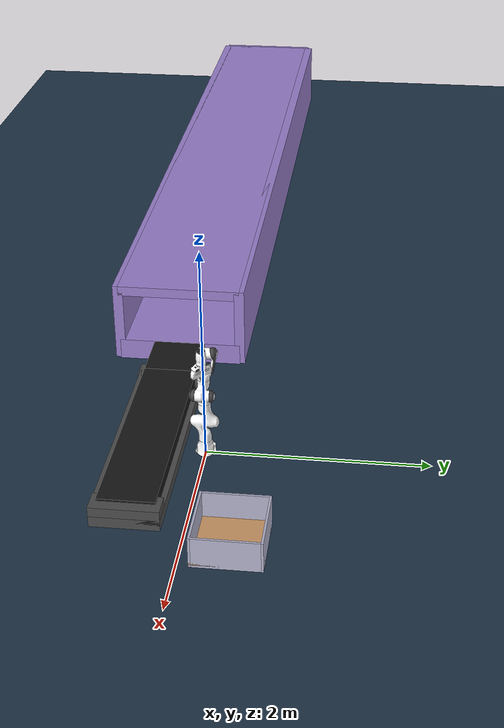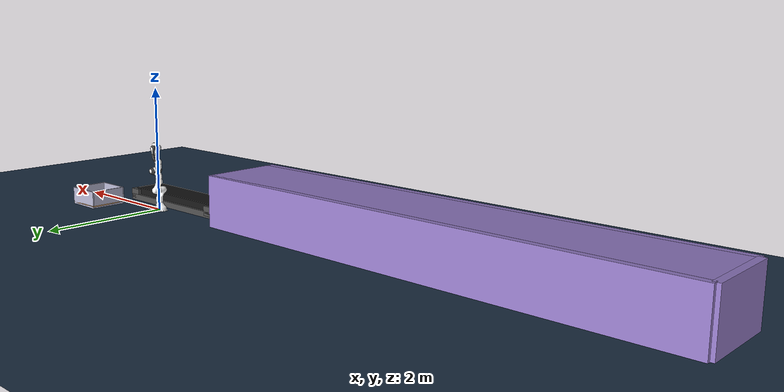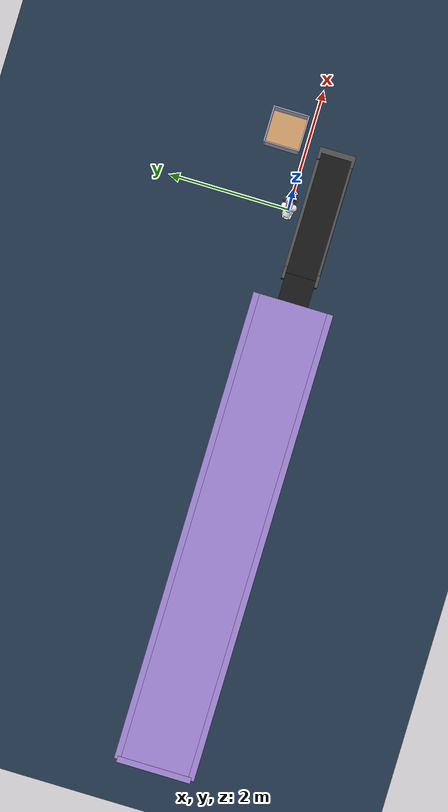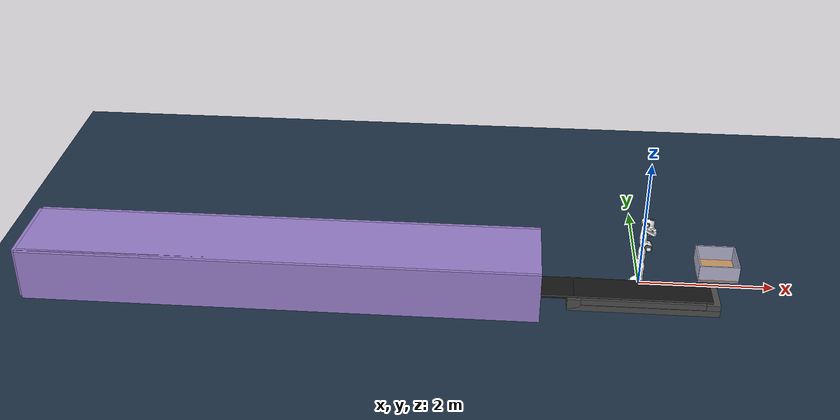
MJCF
<?xml version='1.0' encoding='utf-8'?>
<mujoco model="conveyor_box_system">
  <include file="panda.xml" />
  <include file="conveyor.xml" />
  <compiler angle="radian" coordinate="local" inertiafromgeom="true" />
  <option timestep="0.001" gravity="0 0 -9.81" integrator="RK4" />
  <asset>
    <material name="box_material" rgba="0.8 0.6 0.4 1" />
    <material name="ground_material" rgba="0.9 0.9 0.9 1" />
    <material name="wall_material" rgba="0.7 0.7 0.8 1" />
    <texture name="grid" type="2d" builtin="checker" rgb1="0.1 0.2 0.3" rgb2="0.2 0.3 0.4" width="300" height="300" />
    <material name="grid_material" texture="grid" texrepeat="8 8" rgba="0.8 0.8 0.8 1" />
  </asset>
  <worldbody>
    <geom name="ground" type="plane" size="10 10 0.1" material="grid_material" />
    <body name="collection_box" pos="1.2000000000000002 0.4 0.020000000000000004">
      <geom name="box_bottom" type="box" size="0.30000000000000004 0.30000000000000004 0.010000000000000002" material="box_material" />
      <geom name="box_wall1" type="box" size="0.30000000000000004 0.010000000000000002 0.16000000000000003" pos="0 0.29000000000000004 0.09000000000000002" material="wall_material" />
      <geom name="box_wall2" type="box" size="0.30000000000000004 0.010000000000000002 0.16000000000000003" pos="0 -0.29000000000000004 0.09000000000000002" material="wall_material" />
      <geom name="box_wall3" type="box" size="0.010000000000000002 0.28 0.16000000000000003" pos="0.29000000000000004 0 0.09000000000000002" material="wall_material" />
      <geom name="box_wall4" type="box" size="0.010000000000000002 0.28 0.16000000000000003" pos="-0.29000000000000004 0 0.09000000000000002" material="wall_material" />
    </body>
    <light name="main_light" pos="0 0 10" dir="0 0 -1" diffuse="0.8 0.8 0.8" specular="0.2 0.2 0.2" />
    <light name="side_light" pos="5 5 5" dir="-1 -1 -1" diffuse="0.4 0.4 0.4" />
  </worldbody>
</mujoco>

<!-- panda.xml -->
<mujoco model="panda">
  <compiler angle="radian" meshdir="assets" autolimits="true"/>

  <option integrator="implicitfast"/>

  <default>
    <default class="panda">
      <material specular="0.5" shininess="0.25"/>
      <joint armature="0.1" damping="1" axis="0 0 1" range="-2.8973 2.8973"/>
      <general dyntype="none" biastype="affine" ctrlrange="-2.8973 2.8973" forcerange="-87 87"/>
      <default class="finger">
        <joint axis="0 1 0" type="slide" range="0 0.04"/>
      </default>

      <default class="visual">
        <geom type="mesh" contype="0" conaffinity="0" group="2"/>
      </default>
      <default class="collision">
        <geom type="mesh" group="3"/>
        <default class="fingertip_pad_collision_1">
          <geom type="box" size="0.0085 0.004 0.0085" pos="0 0.0055 0.0445"/>
        </default>
        <default class="fingertip_pad_collision_2">
          <geom type="box" size="0.003 0.002 0.003" pos="0.0055 0.002 0.05"/>
        </default>
        <default class="fingertip_pad_collision_3">
          <geom type="box" size="0.003 0.002 0.003" pos="-0.0055 0.002 0.05"/>
        </default>
        <default class="fingertip_pad_collision_4">
          <geom type="box" size="0.003 0.002 0.0035" pos="0.0055 0.002 0.0395"/>
        </default>
        <default class="fingertip_pad_collision_5">
          <geom type="box" size="0.003 0.002 0.0035" pos="-0.0055 0.002 0.0395"/>
        </default>
      </default>
    </default>
  </default>

  <asset>
    <material class="panda" name="white" rgba="1 1 1 1"/>
    <material class="panda" name="off_white" rgba="0.901961 0.921569 0.929412 1"/>
    <material class="panda" name="black" rgba="0.25 0.25 0.25 1"/>
    <material class="panda" name="green" rgba="0 1 0 1"/>
    <material class="panda" name="light_blue" rgba="0.039216 0.541176 0.780392 1"/>

    <!-- Collision meshes -->
    <mesh name="link0_c" file="link0.stl"/>
    <mesh name="link1_c" file="link1.stl"/>
    <mesh name="link2_c" file="link2.stl"/>
    <mesh name="link3_c" file="link3.stl"/>
    <mesh name="link4_c" file="link4.stl"/>
    <mesh name="link5_c0" file="link5_collision_0.obj"/>
    <mesh name="link5_c1" file="link5_collision_1.obj"/>
    <mesh name="link5_c2" file="link5_collision_2.obj"/>
    <mesh name="link6_c" file="link6.stl"/>
    <mesh name="link7_c" file="link7.stl"/>
    <mesh name="hand_c" file="hand.stl"/>

    <!-- Visual meshes -->
    <mesh file="link0_0.obj"/>
    <mesh file="link0_1.obj"/>
    <mesh file="link0_2.obj"/>
    <mesh file="link0_3.obj"/>
    <mesh file="link0_4.obj"/>
    <mesh file="link0_5.obj"/>
    <mesh file="link0_7.obj"/>
    <mesh file="link0_8.obj"/>
    <mesh file="link0_9.obj"/>
    <mesh file="link0_10.obj"/>
    <mesh file="link0_11.obj"/>
    <mesh file="link1.obj"/>
    <mesh file="link2.obj"/>
    <mesh file="link3_0.obj"/>
    <mesh file="link3_1.obj"/>
    <mesh file="link3_2.obj"/>
    <mesh file="link3_3.obj"/>
    <mesh file="link4_0.obj"/>
    <mesh file="link4_1.obj"/>
    <mesh file="link4_2.obj"/>
    <mesh file="link4_3.obj"/>
    <mesh file="link5_0.obj"/>
    <mesh file="link5_1.obj"/>
    <mesh file="link5_2.obj"/>
    <mesh file="link6_0.obj"/>
    <mesh file="link6_1.obj"/>
    <mesh file="link6_2.obj"/>
    <mesh file="link6_3.obj"/>
    <mesh file="link6_4.obj"/>
    <mesh file="link6_5.obj"/>
    <mesh file="link6_6.obj"/>
    <mesh file="link6_7.obj"/>
    <mesh file="link6_8.obj"/>
    <mesh file="link6_9.obj"/>
    <mesh file="link6_10.obj"/>
    <mesh file="link6_11.obj"/>
    <mesh file="link6_12.obj"/>
    <mesh file="link6_13.obj"/>
    <mesh file="link6_14.obj"/>
    <mesh file="link6_15.obj"/>
    <mesh file="link6_16.obj"/>
    <mesh file="link7_0.obj"/>
    <mesh file="link7_1.obj"/>
    <mesh file="link7_2.obj"/>
    <mesh file="link7_3.obj"/>
    <mesh file="link7_4.obj"/>
    <mesh file="link7_5.obj"/>
    <mesh file="link7_6.obj"/>
    <mesh file="link7_7.obj"/>
    <mesh file="hand_0.obj"/>
    <mesh file="hand_1.obj"/>
    <mesh file="hand_2.obj"/>
    <mesh file="hand_3.obj"/>
    <mesh file="hand_4.obj"/>
    <mesh file="finger_0.obj"/>
    <mesh file="finger_1.obj"/>
  </asset>

  <worldbody>
    <light name="top" pos="0 0 2" mode="trackcom"/>
    <body name="link0" childclass="panda">
      <inertial mass="0.629769" pos="-0.041018 -0.00014 0.049974"
        fullinertia="0.00315 0.00388 0.004285 8.2904e-7 0.00015 8.2299e-6"/>
      <geom mesh="link0_0" material="off_white" class="visual"/>
      <geom mesh="link0_1" material="black" class="visual"/>
      <geom mesh="link0_2" material="off_white" class="visual"/>
      <geom mesh="link0_3" material="black" class="visual"/>
      <geom mesh="link0_4" material="off_white" class="visual"/>
      <geom mesh="link0_5" material="black" class="visual"/>
      <geom mesh="link0_7" material="white" class="visual"/>
      <geom mesh="link0_8" material="white" class="visual"/>
      <geom mesh="link0_9" material="black" class="visual"/>
      <geom mesh="link0_10" material="off_white" class="visual"/>
      <geom mesh="link0_11" material="white" class="visual"/>
      <geom mesh="link0_c" class="collision"/>
      <body name="link1" pos="0 0 0.333">
        <inertial mass="4.970684" pos="0.003875 0.002081 -0.04762"
          fullinertia="0.70337 0.70661 0.0091170 -0.00013900 0.0067720 0.019169"/>
        <joint name="joint1"/>
        <geom material="white" mesh="link1" class="visual"/>
        <geom mesh="link1_c" class="collision"/>
        <body name="link2" quat="1 -1 0 0">
          <inertial mass="0.646926" pos="-0.003141 -0.02872 0.003495"
            fullinertia="0.0079620 2.8110e-2 2.5995e-2 -3.925e-3 1.0254e-2 7.04e-4"/>
          <joint name="joint2" range="-1.7628 1.7628"/>
          <geom material="white" mesh="link2" class="visual"/>
          <geom mesh="link2_c" class="collision"/>
          <body name="link3" pos="0 -0.316 0" quat="1 1 0 0">
            <joint name="joint3"/>
            <inertial mass="3.228604" pos="2.7518e-2 3.9252e-2 -6.6502e-2"
              fullinertia="3.7242e-2 3.6155e-2 1.083e-2 -4.761e-3 -1.1396e-2 -1.2805e-2"/>
            <geom mesh="link3_0" material="white" class="visual"/>
            <geom mesh="link3_1" material="white" class="visual"/>
            <geom mesh="link3_2" material="white" class="visual"/>
            <geom mesh="link3_3" material="black" class="visual"/>
            <geom mesh="link3_c" class="collision"/>
            <body name="link4" pos="0.0825 0 0" quat="1 1 0 0">
              <inertial mass="3.587895" pos="-5.317e-2 1.04419e-1 2.7454e-2"
                fullinertia="2.5853e-2 1.9552e-2 2.8323e-2 7.796e-3 -1.332e-3 8.641e-3"/>
              <joint name="joint4" range="-3.0718 -0.0698"/>
              <geom mesh="link4_0" material="white" class="visual"/>
              <geom mesh="link4_1" material="white" class="visual"/>
              <geom mesh="link4_2" material="black" class="visual"/>
              <geom mesh="link4_3" material="white" class="visual"/>
              <geom mesh="link4_c" class="collision"/>
              <body name="link5" pos="-0.0825 0.384 0" quat="1 -1 0 0">
                <inertial mass="1.225946" pos="-1.1953e-2 4.1065e-2 -3.8437e-2"
                  fullinertia="3.5549e-2 2.9474e-2 8.627e-3 -2.117e-3 -4.037e-3 2.29e-4"/>
                <joint name="joint5"/>
                <geom mesh="link5_0" material="black" class="visual"/>
                <geom mesh="link5_1" material="white" class="visual"/>
                <geom mesh="link5_2" material="white" class="visual"/>
                <geom mesh="link5_c0" class="collision"/>
                <geom mesh="link5_c1" class="collision"/>
                <geom mesh="link5_c2" class="collision"/>
                <body name="link6" quat="1 1 0 0">
                  <inertial mass="1.666555" pos="6.0149e-2 -1.4117e-2 -1.0517e-2"
                    fullinertia="1.964e-3 4.354e-3 5.433e-3 1.09e-4 -1.158e-3 3.41e-4"/>
                  <joint name="joint6" range="-0.0175 3.7525"/>
                  <geom mesh="link6_0" material="off_white" class="visual"/>
                  <geom mesh="link6_1" material="white" class="visual"/>
                  <geom mesh="link6_2" material="black" class="visual"/>
                  <geom mesh="link6_3" material="white" class="visual"/>
                  <geom mesh="link6_4" material="white" class="visual"/>
                  <geom mesh="link6_5" material="white" class="visual"/>
                  <geom mesh="link6_6" material="white" class="visual"/>
                  <geom mesh="link6_7" material="light_blue" class="visual"/>
                  <geom mesh="link6_8" material="light_blue" class="visual"/>
                  <geom mesh="link6_9" material="black" class="visual"/>
                  <geom mesh="link6_10" material="black" class="visual"/>
                  <geom mesh="link6_11" material="white" class="visual"/>
                  <geom mesh="link6_12" material="green" class="visual"/>
                  <geom mesh="link6_13" material="white" class="visual"/>
                  <geom mesh="link6_14" material="black" class="visual"/>
                  <geom mesh="link6_15" material="black" class="visual"/>
                  <geom mesh="link6_16" material="white" class="visual"/>
                  <geom mesh="link6_c" class="collision"/>
                  <body name="link7" pos="0.088 0 0" quat="1 1 0 0">
                    <inertial mass="7.35522e-01" pos="1.0517e-2 -4.252e-3 6.1597e-2"
                      fullinertia="1.2516e-2 1.0027e-2 4.815e-3 -4.28e-4 -1.196e-3 -7.41e-4"/>
                    <joint name="joint7"/>
                    <geom mesh="link7_0" material="white" class="visual"/>
                    <geom mesh="link7_1" material="black" class="visual"/>
                    <geom mesh="link7_2" material="black" class="visual"/>
                    <geom mesh="link7_3" material="black" class="visual"/>
                    <geom mesh="link7_4" material="black" class="visual"/>
                    <geom mesh="link7_5" material="black" class="visual"/>
                    <geom mesh="link7_6" material="black" class="visual"/>
                    <geom mesh="link7_7" material="white" class="visual"/>
                    <geom mesh="link7_c" class="collision"/>
                    <body name="hand" pos="0 0 0.107" quat="0.9238795 0 0 -0.3826834">
                      <inertial mass="0.73" pos="-0.01 0 0.03" diaginertia="0.001 0.0025 0.0017"/>
                      <geom mesh="hand_0" material="off_white" class="visual"/>
                      <geom mesh="hand_1" material="black" class="visual"/>
                      <geom mesh="hand_2" material="black" class="visual"/>
                      <geom mesh="hand_3" material="white" class="visual"/>
                      <geom mesh="hand_4" material="off_white" class="visual"/>
                      <geom mesh="hand_c" class="collision"/>
                      <body name="left_finger" pos="0 0 0.0584">
                        <inertial mass="0.015" pos="0 0 0" diaginertia="2.375e-6 2.375e-6 7.5e-7"/>
                        <joint name="finger_joint1" class="finger"/>
                        <geom mesh="finger_0" material="off_white" class="visual"/>
                        <geom mesh="finger_1" material="black" class="visual"/>
                        <geom mesh="finger_0" class="collision"/>
                        <geom class="fingertip_pad_collision_1"/>
                        <geom class="fingertip_pad_collision_2"/>
                        <geom class="fingertip_pad_collision_3"/>
                        <geom class="fingertip_pad_collision_4"/>
                        <geom class="fingertip_pad_collision_5"/>
                      </body>
                      <body name="right_finger" pos="0 0 0.0584" quat="0 0 0 1">
                        <inertial mass="0.015" pos="0 0 0" diaginertia="2.375e-6 2.375e-6 7.5e-7"/>
                        <joint name="finger_joint2" class="finger"/>
                        <geom mesh="finger_0" material="off_white" class="visual"/>
                        <geom mesh="finger_1" material="black" class="visual"/>
                        <geom mesh="finger_0" class="collision"/>
                        <geom class="fingertip_pad_collision_1"/>
                        <geom class="fingertip_pad_collision_2"/>
                        <geom class="fingertip_pad_collision_3"/>
                        <geom class="fingertip_pad_collision_4"/>
                        <geom class="fingertip_pad_collision_5"/>
                      </body>
                    </body>
                  </body>
                </body>
              </body>
            </body>
          </body>
        </body>
      </body>
    </body>
  </worldbody>

  <tendon>
    <fixed name="split">
      <joint joint="finger_joint1" coef="0.5"/>
      <joint joint="finger_joint2" coef="0.5"/>
    </fixed>
  </tendon>

  <equality>
    <joint joint1="finger_joint1" joint2="finger_joint2" solimp="0.95 0.99 0.001" solref="0.005 1"/>
  </equality>

  <actuator>
    <general class="panda" name="actuator1" joint="joint1" gainprm="4500" biasprm="0 -4500 -450"/>
    <general class="panda" name="actuator2" joint="joint2" gainprm="4500" biasprm="0 -4500 -450"
      ctrlrange="-1.7628 1.7628"/>
    <general class="panda" name="actuator3" joint="joint3" gainprm="3500" biasprm="0 -3500 -350"/>
    <general class="panda" name="actuator4" joint="joint4" gainprm="3500" biasprm="0 -3500 -350"
      ctrlrange="-3.0718 -0.0698"/>
    <general class="panda" name="actuator5" joint="joint5" gainprm="2000" biasprm="0 -2000 -200" forcerange="-12 12"/>
    <general class="panda" name="actuator6" joint="joint6" gainprm="2000" biasprm="0 -2000 -200" forcerange="-12 12"
      ctrlrange="-0.0175 3.7525"/>
    <general class="panda" name="actuator7" joint="joint7" gainprm="2000" biasprm="0 -2000 -200" forcerange="-12 12"/>
    <!-- Remap original ctrlrange (0, 0.04) to (0, 255): 0.04 * 100 / 255 = 0.01568627451 -->
    <general class="panda" name="actuator8" tendon="split" forcerange="-100 100" ctrlrange="0 255"
      gainprm="0.01568627451 0 0" biasprm="0 -100 -10"/>
  </actuator>

  <contact>
    <exclude body1="link0" body2="link1"/>
  </contact>
</mujoco>

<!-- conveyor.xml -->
<mujoco model="conveyor_with_warehouse">
    <compiler angle="radian" coordinate="local" inertiafromgeom="true" eulerseq="xyz" />
    <option timestep="0.0005" integrator="RK4" gravity="0 0 -9.81" iterations="100" tolerance="1e-10" />

    <asset>
        <material name="conveyor_mat" rgba="0.2 0.2 0.2 1" />
        <material name="ground_mat" rgba="0.9 0.9 0.9 1" />
        <material name="box_mat" rgba="0.8 0.4 0.2 1" />
        <material name="support_mat" rgba="0.3 0.3 0.3 1" />
        <material name="warehouse_mat" rgba="0.6 0.5 0.8 1" />
        <material name="warehouse_opening" rgba="0.2 0.2 0.2 1" />
        <texture name="moving_belt" type="2d" builtin="checker" rgb1="0.4 0.4 0.4" width="100" height="100" />
        <material name="belt_material" texture="moving_belt" texrepeat="50 2" rgba="0.2 0.2 0.2 1" />
    </asset>

    <worldbody>

        <!-- front view: positioned in front of the robot looking toward negative x (adjust as needed) -->
        <camera name="front_cam" pos="2.5 -0.4 0.8" xyaxes="0 1 0 0 0 1" />
        <!-- side view: positioned to the right side, looking toward robot center -->
        <camera name="side_cam" pos="0 -2.5 0.8" xyaxes="1 0 0 0 0 1" />
        <!-- top-down view: high above looking straight down -->
        <camera name="topdown_cam" pos="0 0 3.0" xyaxes="1 0 0 0 1 0" />

        <geom name="warehouse_floor" type="box" size="3.8 0.6 0.15" pos="-5.3 -0.5 0.05" material="warehouse_mat" condim="6" friction="0 1 1" />

        <geom name="warehouse_back" type="box" size="0.05 0.6 0.4" pos="-9.1 -0.5 0.4" material="warehouse_mat" condim="6" friction="1.0 0.1 0.01" />

        <geom name="warehouse_left" type="box" size="3.8 0.05 0.4" pos="-5.3 -1.1 0.4" material="warehouse_mat" condim="6" friction="1.0 0.1 0.01" />

        <geom name="warehouse_right" type="box" size="3.8 0.05 0.4" pos="-5.3 0.09999999999999998 0.4" material="warehouse_mat" condim="6" friction="1.0 0.1 0.01" />

        <geom name="warehouse_roof" type="box" size="3.8 0.6 0.05" pos="-5.3 -0.5 0.75" material="warehouse_mat" condim="6" friction="0 1 1" />

        <geom name="left_support" type="box" size="0.1 0.3 0.08" pos="-1 -0.5 0.1" material="support_mat" condim="6" friction="0 0.1 0.01" />
        <geom name="right_support" type="box" size="0.1 0.3 0.08" pos="1 -0.5 0.1" material="support_mat" condim="6" friction="0 0.1 0.01" />
        <geom name="frame_base" type="box" size="1.1 0.3 0.05" pos="0 -0.5 0.04" material="support_mat" condim="6" friction="0 0.1 0.01" />

        <geom name="belt_surface" type="box" size="1 0.25 0.08" pos="0 -0.5 0.12" material="belt_material" condim="6" friction="0 1 1" />

        <geom name="left_rail" type="box" size="1 0.02 0.05" pos="0 -0.77 0.13" material="support_mat" condim="6" friction="0 0.1 0.01" />
        <geom name="right_rail" type="box" size="1 0.02 0.05" pos="0 -0.73 0.13" material="support_mat" condim="6" friction="0 0.1 0.01" />

        <geom name="connection_bridge" type="box" size="0.25 0.25 0.02" pos="-1.25 -0.5 0.18" material="belt_material" condim="6" friction="0 1 1" />

        <light name="top_light" pos="0 0 4" dir="0 0 -1" diffuse="0.8 0.8 0.8" />
        <light name="side_light1" pos="3 3 3" dir="-1 -1 -1" diffuse="0.4 0.4 0.4" />
        <light name="side_light2" pos="-3 3 3" dir="1 -1 -1" diffuse="0.4 0.4 0.4" />
        <light name="warehouse_light" pos="-5.8 -0.5 1" dir="0 0 -1" diffuse="0.6 0.6 0.6" />
    </worldbody>
</mujoco>
